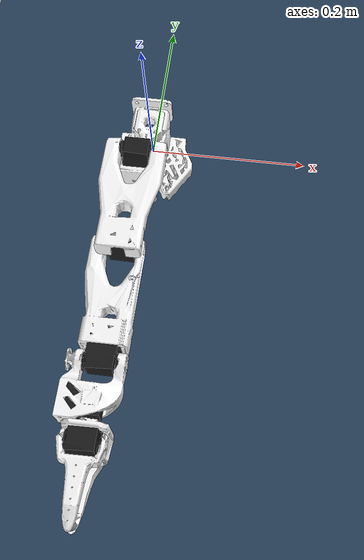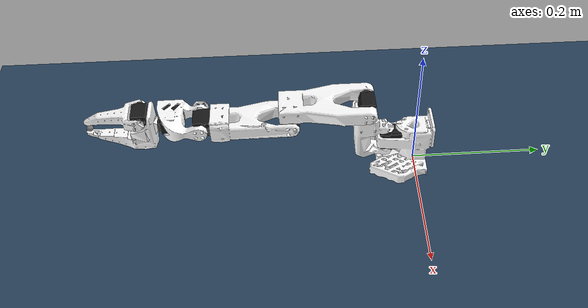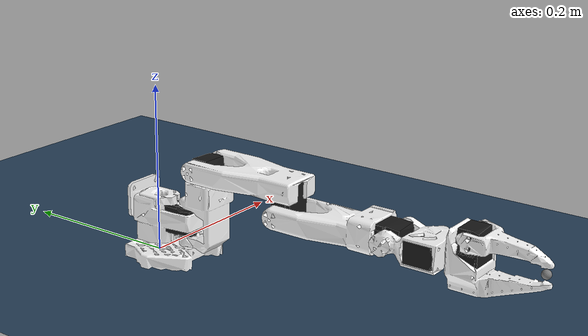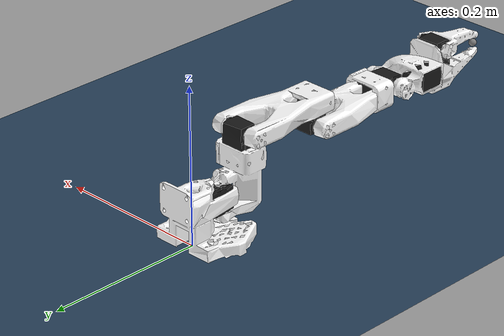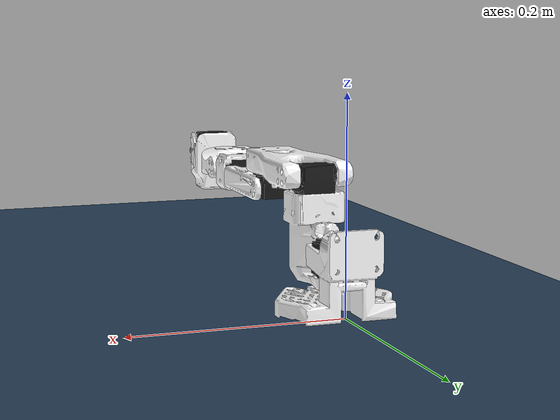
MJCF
<mujoco model="strands_sim">
  <compiler angle="radian"/>

  <option impratio="10" cone="elliptic"/>

  <size nkey="2"/>

  <visual>
    <global offwidth="1280" offheight="960"/>
    <headlight ambient="0.3 0.3 0.3" diffuse="0.2 0.2 0.2" specular="0 0 0"/>
  </visual>

  <default>
    <default class="arm/main">
      <default class="arm/so_arm100">
        <joint armature="0.1" frictionloss="0.1"/>
        <general forcerange="-3.5 3.5" biastype="affine" gainprm="50" biasprm="0 -50 1"/>
        <default class="arm/Rotation">
          <joint range="-1.92 1.92" axis="0 1 0"/>
        </default>
        <default class="arm/Pitch">
          <joint range="-3.32 0.174" axis="1 0 0"/>
        </default>
        <default class="arm/Elbow">
          <joint range="-0.174 3.14" axis="1 0 0"/>
        </default>
        <default class="arm/Wrist_Pitch">
          <joint range="-1.66 1.66" axis="1 0 0"/>
        </default>
        <default class="arm/Wrist_Roll">
          <joint range="-2.79 2.79" axis="0 1 0"/>
        </default>
        <default class="arm/Jaw">
          <joint range="-0.174 1.75"/>
        </default>
        <default class="arm/visual">
          <geom type="mesh" contype="0" conaffinity="0" group="2" density="0" material="white"/>
          <default class="arm/motor_visual">
            <geom material="black"/>
          </default>
        </default>
        <default class="arm/collision">
          <geom type="mesh" group="3" material="white"/>
          <default class="arm/finger_collision">
            <geom type="box" solref="0.01" solimp="2 1 0.01"/>
          </default>
        </default>
      </default>
    </default>
  </default>

  <asset>
    <texture type="2d" colorspace="auto" name="grid_tex" builtin="checker" rgb1="0.2 0.3 0.4" rgb2="0.1 0.2 0.3" width="512" height="512"/>
    <texture type="skybox" colorspace="auto" builtin="gradient" rgb1="0.3 0.5 0.7" rgb2="0 0 0" width="512" height="3072"/>
    <texture type="2d" colorspace="auto" name="arm/groundplane" builtin="checker" mark="edge" rgb1="0.2 0.3 0.4" rgb2="0.1 0.2 0.3" markrgb="0.8 0.8 0.8" width="300" height="300"/>
    <material name="grid_mat" texture="grid_tex" texrepeat="8 8" reflectance="0.2"/>
    <material name="arm/white"/>
    <material name="arm/black" rgba="0.1 0.1 0.1 1"/>
    <material name="arm/groundplane" texture="arm/groundplane" texrepeat="5 5" texuniform="true" reflectance="0.2"/>
    <mesh name="arm/Base" file="/home/cagatay/.strands_robots/assets/trs_so_arm100/assets/Base.stl"/>
    <mesh name="arm/Base_Motor" file="/home/cagatay/.strands_robots/assets/trs_so_arm100/assets/Base_Motor.stl"/>
    <mesh name="arm/Rotation_Pitch" file="/home/cagatay/.strands_robots/assets/trs_so_arm100/assets/Rotation_Pitch.stl"/>
    <mesh name="arm/Rotation_Pitch_Motor" file="/home/cagatay/.strands_robots/assets/trs_so_arm100/assets/Rotation_Pitch_Motor.stl"/>
    <mesh name="arm/Upper_Arm" file="/home/cagatay/.strands_robots/assets/trs_so_arm100/assets/Upper_Arm.stl"/>
    <mesh name="arm/Upper_Arm_Motor" file="/home/cagatay/.strands_robots/assets/trs_so_arm100/assets/Upper_Arm_Motor.stl"/>
    <mesh name="arm/Lower_Arm" file="/home/cagatay/.strands_robots/assets/trs_so_arm100/assets/Lower_Arm.stl"/>
    <mesh name="arm/Lower_Arm_Motor" file="/home/cagatay/.strands_robots/assets/trs_so_arm100/assets/Lower_Arm_Motor.stl"/>
    <mesh name="arm/Wrist_Pitch_Roll" file="/home/cagatay/.strands_robots/assets/trs_so_arm100/assets/Wrist_Pitch_Roll.stl"/>
    <mesh name="arm/Wrist_Pitch_Roll_Motor" file="/home/cagatay/.strands_robots/assets/trs_so_arm100/assets/Wrist_Pitch_Roll_Motor.stl"/>
    <mesh name="arm/Fixed_Jaw" file="/home/cagatay/.strands_robots/assets/trs_so_arm100/assets/Fixed_Jaw.stl"/>
    <mesh name="arm/Fixed_Jaw_Motor" file="/home/cagatay/.strands_robots/assets/trs_so_arm100/assets/Fixed_Jaw_Motor.stl"/>
    <mesh name="arm/Fixed_Jaw_Collision_1" file="/home/cagatay/.strands_robots/assets/trs_so_arm100/assets/Fixed_Jaw_Collision_1.stl"/>
    <mesh name="arm/Fixed_Jaw_Collision_2" file="/home/cagatay/.strands_robots/assets/trs_so_arm100/assets/Fixed_Jaw_Collision_2.stl"/>
    <mesh name="arm/Moving_Jaw" file="/home/cagatay/.strands_robots/assets/trs_so_arm100/assets/Moving_Jaw.stl"/>
    <mesh name="arm/Moving_Jaw_Collision_1" file="/home/cagatay/.strands_robots/assets/trs_so_arm100/assets/Moving_Jaw_Collision_1.stl"/>
    <mesh name="arm/Moving_Jaw_Collision_2" file="/home/cagatay/.strands_robots/assets/trs_so_arm100/assets/Moving_Jaw_Collision_2.stl"/>
    <mesh name="arm/Moving_Jaw_Collision_3" file="/home/cagatay/.strands_robots/assets/trs_so_arm100/assets/Moving_Jaw_Collision_3.stl"/>
  </asset>

  <worldbody>
    <geom name="ground" size="5 5 0.01" type="plane" material="grid_mat"/>
    <camera name="default" quat="0.319095 0.211246 0.509992 0.770365" pos="1.5 1.5 1.2" fovy="60"/>
    <light name="main_light" pos="0 0 3.5" diffuse="0.6 0.6 0.6" specular="0.2 0.2 0.2" type="directional"/>
    <light pos="0 0 1.5" type="directional"/>
    <body name="arm/Base" childclass="arm/so_arm100">
      <geom class="arm/visual" material="arm/white" mesh="arm/Base"/>
      <geom class="arm/motor_visual" material="arm/black" mesh="arm/Base_Motor"/>
      <geom class="arm/collision" material="arm/white" mesh="arm/Base"/>
      <body name="arm/Rotation_Pitch" pos="0 -0.0452 0.0165" quat="0.707105 0.707108 0 0">
        <inertial pos="-9.07886e-05 0.0590972 0.031089" quat="0.363978 0.441169 -0.623108 0.533504" mass="0.119226" diaginertia="5.94278e-05 5.89975e-05 3.13712e-05"/>
        <joint name="arm/Rotation" class="arm/Rotation"/>
        <geom class="arm/visual" material="arm/white" mesh="arm/Rotation_Pitch"/>
        <geom class="arm/motor_visual" material="arm/black" mesh="arm/Rotation_Pitch_Motor"/>
        <geom class="arm/collision" material="arm/white" mesh="arm/Rotation_Pitch"/>
        <body name="arm/Upper_Arm" pos="0 0.1025 0.0306" quat="0.707109 0.707105 0 0">
          <inertial pos="-1.72052e-05 0.0701802 0.00310545" quat="0.50104 0.498994 -0.493562 0.50632" mass="0.162409" diaginertia="0.000213312 0.000167164 7.01522e-05"/>
          <joint name="arm/Pitch" class="arm/Pitch"/>
          <geom class="arm/visual" material="arm/white" mesh="arm/Upper_Arm"/>
          <geom class="arm/motor_visual" material="arm/black" mesh="arm/Upper_Arm_Motor"/>
          <geom class="arm/collision" material="arm/white" mesh="arm/Upper_Arm"/>
          <body name="arm/Lower_Arm" pos="0 0.11257 0.028" quat="0.707109 -0.707105 0 0">
            <inertial pos="-0.00339604 0.00137796 0.0768007" quat="0.701995 0.0787996 0.0645626 0.704859" mass="0.147968" diaginertia="0.000138803 0.000107748 4.84242e-05"/>
            <joint name="arm/Elbow" class="arm/Elbow"/>
            <geom class="arm/visual" material="arm/white" mesh="arm/Lower_Arm"/>
            <geom class="arm/motor_visual" material="arm/black" mesh="arm/Lower_Arm_Motor"/>
            <geom class="arm/collision" material="arm/white" mesh="arm/Lower_Arm"/>
            <body name="arm/Wrist_Pitch_Roll" pos="0 0.0052 0.1349" quat="0.707109 -0.707105 0 0">
              <inertial pos="-0.00852653 -0.0352279 -2.34622e-05" quat="-0.0522806 0.705235 0.0549524 0.704905" mass="0.0661321" diaginertia="3.45403e-05 2.39041e-05 1.94704e-05"/>
              <joint name="arm/Wrist_Pitch" class="arm/Wrist_Pitch"/>
              <geom class="arm/visual" material="arm/white" mesh="arm/Wrist_Pitch_Roll"/>
              <geom class="arm/motor_visual" material="arm/black" mesh="arm/Wrist_Pitch_Roll_Motor"/>
              <geom class="arm/collision" material="arm/white" mesh="arm/Wrist_Pitch_Roll"/>
              <body name="arm/Fixed_Jaw" pos="0 -0.0601 0" quat="0.707109 0 0.707105 0">
                <inertial pos="0.00552377 -0.0280167 0.000483583" quat="0.41836 0.620891 -0.350644 0.562599" mass="0.0929859" diaginertia="5.03136e-05 4.64098e-05 2.72961e-05"/>
                <joint name="arm/Wrist_Roll" class="arm/Wrist_Roll"/>
                <geom class="arm/visual" material="arm/white" mesh="arm/Fixed_Jaw"/>
                <geom class="arm/motor_visual" material="arm/black" mesh="arm/Fixed_Jaw_Motor"/>
                <geom class="arm/collision" material="arm/white" mesh="arm/Fixed_Jaw_Collision_1"/>
                <geom class="arm/collision" material="arm/white" mesh="arm/Fixed_Jaw_Collision_2"/>
                <geom name="arm/fixed_jaw_pad_1" class="arm/finger_collision" size="0.001 0.005 0.004" pos="0.0089 -0.1014 0" material="arm/white"/>
                <geom name="arm/fixed_jaw_pad_2" class="arm/finger_collision" size="0.001 0.005 0.006" pos="0.0109 -0.0914 0" material="arm/white"/>
                <geom name="arm/fixed_jaw_pad_3" class="arm/finger_collision" size="0.001 0.01 0.007" pos="0.0126 -0.0768 0" material="arm/white"/>
                <geom name="arm/fixed_jaw_pad_4" class="arm/finger_collision" size="0.001 0.01 0.008" pos="0.0143 -0.0572 0" material="arm/white"/>
                <site name="arm/tcp" pos="0 -0.0995 0.001"/>
                <body name="arm/Moving_Jaw" pos="-0.0202 -0.0244 0" quat="1.34924e-11 -3.67321e-06 1 -3.67321e-06">
                  <inertial pos="-0.00161745 -0.0303473 0.000449646" quat="0.696562 0.716737 -0.0239844 -0.0227026" mass="0.0202444" diaginertia="1.11265e-05 8.99651e-06 2.99548e-06"/>
                  <joint name="arm/Jaw" class="arm/Jaw"/>
                  <geom class="arm/visual" material="arm/white" mesh="arm/Moving_Jaw"/>
                  <geom class="arm/collision" material="arm/white" mesh="arm/Moving_Jaw_Collision_1"/>
                  <geom class="arm/collision" material="arm/white" mesh="arm/Moving_Jaw_Collision_2"/>
                  <geom class="arm/collision" material="arm/white" mesh="arm/Moving_Jaw_Collision_3"/>
                  <geom name="arm/moving_jaw_pad_1" class="arm/finger_collision" size="0.001 0.005 0.004" pos="-0.0113 -0.077 0" material="arm/white"/>
                  <geom name="arm/moving_jaw_pad_2" class="arm/finger_collision" size="0.001 0.005 0.006" pos="-0.0093 -0.067 0" material="arm/white"/>
                  <geom name="arm/moving_jaw_pad_3" class="arm/finger_collision" size="0.001 0.01 0.006" pos="-0.0073 -0.055 0" material="arm/white"/>
                  <geom name="arm/moving_jaw_pad_4" class="arm/finger_collision" size="0.001 0.01 0.008" pos="-0.0073 -0.035 0" material="arm/white"/>
                </body>
              </body>
            </body>
          </body>
        </body>
      </body>
    </body>
  </worldbody>

  <contact>
    <exclude body1="arm/Base" body2="arm/Rotation_Pitch"/>
  </contact>

  <actuator>
    <general name="arm/Rotation" class="arm/Rotation" joint="arm/Rotation" ctrlrange="-1.92 1.92"/>
    <general name="arm/Pitch" class="arm/Pitch" joint="arm/Pitch" ctrlrange="-3.32 0.174"/>
    <general name="arm/Elbow" class="arm/Elbow" joint="arm/Elbow" ctrlrange="-0.174 3.14"/>
    <general name="arm/Wrist_Pitch" class="arm/Wrist_Pitch" joint="arm/Wrist_Pitch" ctrlrange="-1.66 1.66"/>
    <general name="arm/Wrist_Roll" class="arm/Wrist_Roll" joint="arm/Wrist_Roll" ctrlrange="-2.79 2.79"/>
    <general name="arm/Jaw" class="arm/Jaw" joint="arm/Jaw" ctrlrange="-0.174 1.75"/>
  </actuator>

  <keyframe>
    <key name="arm/home" qpos="0 -1.57 1.57 1.57 -1.57 0" ctrl="0 -1.57 1.57 1.57 -1.57 0"/>
    <key name="arm/rest" qpos="0 -3.32 3.11 1.18 0 -0.174" ctrl="0 -3.32 3.11 1.18 0 -0.174"/>
  </keyframe>
</mujoco>
